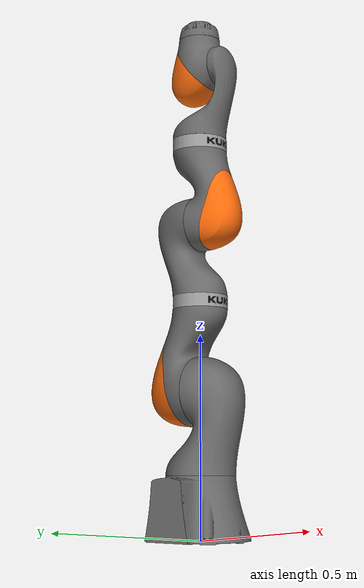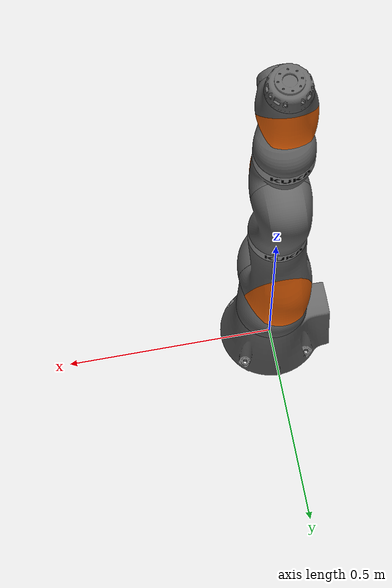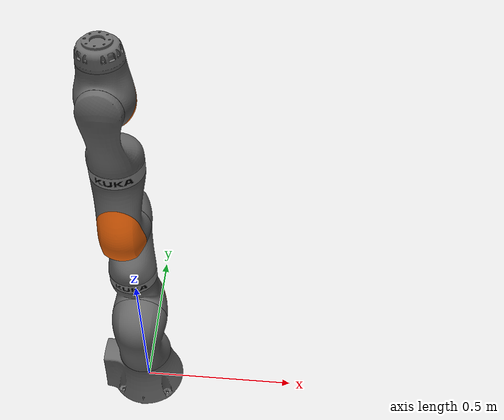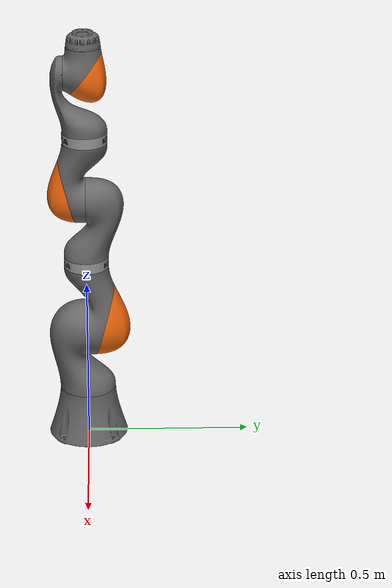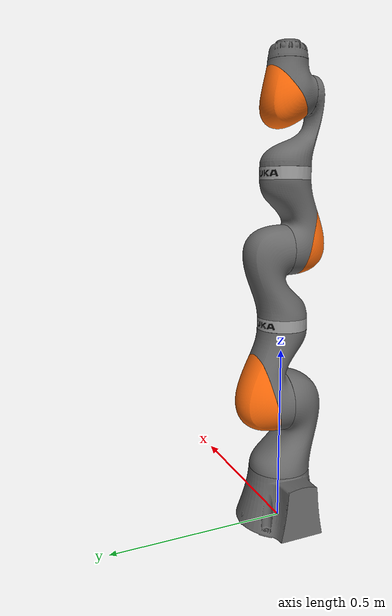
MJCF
<?xml version="1.0" ?>
<mujoco model="iiwa14">
	<compiler meshdir="iiwa14/meshes" texturedir="iiwa14/textures" angle="radian" autolimits="true" balanceinertia="true" boundmass="0.000001" boundinertia="0.000001"/>
	<default>
		<default class="visual">
			<geom contype="0" conaffinity="0"/>
		</default>
		<default class="collision">
			<geom rgba="1.0 0.0 0.0 0.0"/>
		</default>
	</default>
	<asset>
		<mesh name="link_0" file="stl/link_0.stl" scale="1.0 1.0 1.0"/>
		<mesh name="link_1" file="stl/link_1.stl" scale="1.0 1.0 1.0"/>
		<mesh name="link_2_orange" file="stl/link_2_orange.stl" scale="1.0 1.0 1.0"/>
		<mesh name="link_2_grey" file="stl/link_2_grey.stl" scale="1.0 1.0 1.0"/>
		<mesh name="link_3" file="stl/link_3.stl" scale="1.0 1.0 1.0"/>
		<mesh name="band" file="stl/band.stl" scale="1.0 1.0 1.0"/>
		<mesh name="kuka" file="stl/kuka.stl" scale="1.0 1.0 1.0"/>
		<mesh name="link_4_orange" file="stl/link_4_orange.stl" scale="1.0 1.0 1.0"/>
		<mesh name="link_4_grey" file="stl/link_4_grey.stl" scale="1.0 1.0 1.0"/>
		<mesh name="link_5" file="stl/link_5.stl" scale="1.0 1.0 1.0"/>
		<mesh name="link_6_orange" file="stl/link_6_orange.stl" scale="1.0 1.0 1.0"/>
		<mesh name="link_6_grey" file="stl/link_6_grey.stl" scale="1.0 1.0 1.0"/>
		<mesh name="link_7" file="stl/link_7.stl" scale="1.0 1.0 1.0"/>
		<material name="gray" rgba="0.4000000059604645 0.4000000059604645 0.4000000059604645 1.0" emission="0.0" specular="0.5"/>
		<material name="orange" rgba="1.0 0.4235289990901947 0.03921569883823395 1.0" emission="0.0" specular="0.5"/>
		<material name="light_gray" rgba="0.6000000238418579 0.6000000238418579 0.6000000238418579 1.0" emission="0.0" specular="0.5"/>
		<material name="black" rgba="0.0 0.0 0.0 1.0" emission="0.0" specular="0.5"/>
	</asset>
	<worldbody>
		<body name="iiwa14" pos="0.0 0.0 0.0" quat="1.0 0.0 0.0 0.0">
			<body name="base" pos="0.0 0.0 0.0" quat="1.0 0.0 0.0 0.0">
				<geom name="Geom_0" type="mesh" pos="-0.012611671350896358 -3.254423290854902e-07 0.07039070874452591" quat="-5.004489503335208e-05 0.7340425252914429 -7.331180427172512e-07 0.6791034936904907" mesh="link_0" material="gray" class="visual"/>
				<geom name="Geom_1" type="sphere" pos="0.0 0.0 0.029999999329447746" quat="1.0 0.0 0.0 0.0" size="0.11999999731779099 0.0 0.0" class="collision"/>
				<geom name="Geom_2" type="sphere" pos="-0.07999999821186066 0.0 0.10300000011920929" quat="1.0 0.0 0.0 0.0" size="0.07999999821186066 0.0 0.0" class="collision"/>
				<geom name="Geom_3" type="sphere" pos="-0.07999999821186066 0.0 0.03999999910593033" quat="1.0 0.0 0.0 0.0" size="0.07999999821186066 0.0 0.0" class="collision"/>
				<geom name="Geom_4" type="sphere" pos="0.0 0.0 0.14000000059604645" quat="1.0 0.0 0.0 0.0" size="0.10000000149011612 0.0 0.0" class="collision"/>
				<body name="link1" pos="0.0 0.0 0.1574999988079071" quat="1.0 0.0 0.0 0.0">
					<inertial mass="5.760000228881836" pos="0.0 -0.029999999329447746 0.11999999731779099" quat="1.0 0.0 0.0 0.0" diaginertia="0.0333000011742115 0.032999999821186066 0.012299999594688416"/>
					<geom name="Geom_5" type="mesh" pos="-1.9467224774416536e-06 -0.0335107184946537 0.1230739951133728" quat="0.702965259552002 0.07586953043937683 -0.07589659094810486 0.7030813694000244" mesh="link_1" material="gray" class="visual"/>
					<geom name="Geom_6" type="sphere" pos="0.0 0.0 -0.0005000000237487257" quat="1.0 0.0 0.0 0.0" size="0.07999999821186066 0.0 0.0" class="collision"/>
					<geom name="Geom_7" type="sphere" pos="0.009999999776482582 -0.02500000037252903 0.042500000447034836" quat="1.0 0.0 0.0 0.0" size="0.07500000298023224 0.0 0.0" class="collision"/>
					<geom name="Geom_8" type="sphere" pos="-0.009999999776482582 -0.02500000037252903 0.042500000447034836" quat="1.0 0.0 0.0 0.0" size="0.07500000298023224 0.0 0.0" class="collision"/>
					<geom name="Geom_9" type="sphere" pos="0.009999999776482582 -0.04500000178813934 0.10249999910593033" quat="1.0 0.0 0.0 0.0" size="0.07000000029802322 0.0 0.0" class="collision"/>
					<geom name="Geom_10" type="sphere" pos="-0.009999999776482582 -0.04500000178813934 0.10249999910593033" quat="1.0 0.0 0.0 0.0" size="0.07000000029802322 0.0 0.0" class="collision"/>
					<joint name="joint1" type="hinge" pos="0.0 0.0 0.0" range="-2.967060089111328 2.967060089111328" axis="0.0 0.0 1.0"/>
					<body name="link2" pos="0.0 0.0 0.20250000059604645" quat="0.0 0.0 0.7071067690849304 0.7071067690849304">
						<inertial mass="6.349999904632568" pos="0.0003000000142492354 0.05900000035762787 0.041999999433755875" quat="0.0 0.0 0.7071067690849304 0.7071067690849304" diaginertia="0.030500000342726707 0.030400000512599945 0.010999999940395355"/>
						<geom name="Geom_11" type="mesh" pos="5.833200248162029e-06 -0.0013649110915139318 0.08664810657501221" quat="0.44626760482788086 0.5484779477119446 -0.5484436750411987 0.4463481605052948" mesh="link_2_orange" material="orange" class="visual"/>
						<geom name="Geom_12" type="mesh" pos="0.0004379349120426923 0.10289616882801056 0.015210239216685295" quat="0.5095700025558472 0.4902762472629547 -0.4902554154396057 0.5095264911651611" mesh="link_2_grey" material="gray" class="visual"/>
						<geom name="Geom_13" type="sphere" pos="0.0 0.0 -0.009999999776482582" quat="1.0 0.0 0.0 0.0" size="0.0949999988079071 0.0 0.0" class="collision"/>
						<geom name="Geom_14" type="sphere" pos="0.0 0.0 0.04500000178813934" quat="1.0 0.0 0.0 0.0" size="0.09000000357627869 0.0 0.0" class="collision"/>
						<geom name="Geom_15" type="sphere" pos="-0.009999999776482582 0.03999999910593033 0.05400000140070915" quat="1.0 0.0 0.0 0.0" size="0.07000000029802322 0.0 0.0" class="collision"/>
						<geom name="Geom_16" type="sphere" pos="-0.009999999776482582 0.09000000357627869 0.03999999910593033" quat="1.0 0.0 0.0 0.0" size="0.06499999761581421 0.0 0.0" class="collision"/>
						<geom name="Geom_17" type="sphere" pos="-0.009999999776482582 0.12999999523162842 0.019999999552965164" quat="1.0 0.0 0.0 0.0" size="0.06499999761581421 0.0 0.0" class="collision"/>
						<geom name="Geom_18" type="sphere" pos="0.009999999776482582 0.03999999910593033 0.05400000140070915" quat="1.0 0.0 0.0 0.0" size="0.07000000029802322 0.0 0.0" class="collision"/>
						<geom name="Geom_19" type="sphere" pos="0.009999999776482582 0.09000000357627869 0.03999999910593033" quat="1.0 0.0 0.0 0.0" size="0.06499999761581421 0.0 0.0" class="collision"/>
						<geom name="Geom_20" type="sphere" pos="0.009999999776482582 0.12999999523162842 0.019999999552965164" quat="1.0 0.0 0.0 0.0" size="0.06499999761581421 0.0 0.0" class="collision"/>
						<geom name="Geom_21" type="sphere" pos="0.0 0.18000000715255737 0.0" quat="1.0 0.0 0.0 0.0" size="0.07500000298023224 0.0 0.0" class="collision"/>
						<joint name="joint2" type="hinge" pos="0.0 0.0 0.0" range="-2.094399929046631 2.094399929046631" axis="0.0 0.0 1.0"/>
						<body name="link3" pos="0.0 0.2045000046491623 0.0" quat="0.0 0.0 0.7071067690849304 0.7071067690849304">
							<inertial mass="3.5" pos="0.0 0.029999999329447746 0.12999999523162842" quat="1.0 0.0 0.0 0.0" diaginertia="0.02500000037252903 0.023800000548362732 0.007600000128149986"/>
							<geom name="Geom_22" type="mesh" pos="1.407883019055589e-06 0.03297119960188866 0.13639560341835022" quat="0.6979047656059265 -0.0827929750084877 0.08380381017923355 0.7064355611801147" mesh="link_3" material="gray" class="visual"/>
							<geom name="Geom_23" type="mesh" pos="-3.5052686143899336e-05 -1.8385724615654908e-05 0.016549965366721153" quat="-0.02164478413760662 0.706791877746582 0.02163795754313469 0.7067591547966003" mesh="band" material="light_gray" class="visual"/>
							<geom name="Geom_24" type="mesh" pos="1.0515899475649348e-06 -2.8647250474023167e-06 0.01613546535372734" quat="0.48493528366088867 0.5145955085754395 -0.4849644899368286 0.5146247744560242" mesh="kuka" material="black" class="visual"/>
							<geom name="Geom_25" type="sphere" pos="0.0 0.0 0.03550000116229057" quat="1.0 0.0 0.0 0.0" size="0.07500000298023224 0.0 0.0" class="collision"/>
							<geom name="Geom_26" type="sphere" pos="0.009999999776482582 0.023000000044703484 0.08550000190734863" quat="1.0 0.0 0.0 0.0" size="0.05999999865889549 0.0 0.0" class="collision"/>
							<geom name="Geom_27" type="sphere" pos="0.009999999776482582 0.04800000041723251 0.12549999356269836" quat="1.0 0.0 0.0 0.0" size="0.054999999701976776 0.0 0.0" class="collision"/>
							<geom name="Geom_28" type="sphere" pos="0.009999999776482582 0.0560000017285347 0.17550000548362732" quat="1.0 0.0 0.0 0.0" size="0.05999999865889549 0.0 0.0" class="collision"/>
							<geom name="Geom_29" type="sphere" pos="-0.009999999776482582 0.023000000044703484 0.08550000190734863" quat="1.0 0.0 0.0 0.0" size="0.05999999865889549 0.0 0.0" class="collision"/>
							<geom name="Geom_30" type="sphere" pos="-0.009999999776482582 0.04800000041723251 0.12549999356269836" quat="1.0 0.0 0.0 0.0" size="0.054999999701976776 0.0 0.0" class="collision"/>
							<geom name="Geom_31" type="sphere" pos="-0.009999999776482582 0.0560000017285347 0.17550000548362732" quat="1.0 0.0 0.0 0.0" size="0.05999999865889549 0.0 0.0" class="collision"/>
							<geom name="Geom_32" type="sphere" pos="0.0 0.04500000178813934 0.21549999713897705" quat="1.0 0.0 0.0 0.0" size="0.07500000298023224 0.0 0.0" class="collision"/>
							<geom name="Geom_33" type="sphere" pos="0.0 0.0 0.21549999713897705" quat="1.0 0.0 0.0 0.0" size="0.07500000298023224 0.0 0.0" class="collision"/>
							<joint name="joint3" type="hinge" pos="0.0 0.0 0.0" range="-2.967060089111328 2.967060089111328" axis="0.0 0.0 1.0"/>
							<body name="link4" pos="0.0 0.0 0.21549999713897705" quat="0.7071067690849304 0.7071067690849304 0.0 0.0">
								<inertial mass="3.5" pos="0.0 0.06700000166893005 0.03400000184774399" quat="0.7071067690849304 0.7071067690849304 0.0 0.0" diaginertia="0.017000000923871994 0.01640000008046627 0.006000000052154064"/>
								<geom name="Geom_34" type="mesh" pos="4.824970801564632e-06 0.00796885509043932 0.07976153492927551" quat="0.4424828588962555 0.5515479445457458 -0.5516470074653625 0.44236791133880615" mesh="link_4_orange" material="orange" class="visual"/>
								<geom name="Geom_35" type="mesh" pos="-7.19085733180691e-07 0.09924633800983429 0.012969840317964554" quat="0.5156792402267456 0.48389121890068054 -0.48382964730262756 0.5155900716781616" mesh="link_4_grey" material="gray" class="visual"/>
								<geom name="Geom_36" type="sphere" pos="0.0 0.009999999776482582 0.04600000008940697" quat="1.0 0.0 0.0 0.0" size="0.07800000160932541 0.0 0.0" class="collision"/>
								<geom name="Geom_37" type="sphere" pos="0.009999999776482582 0.05999999865889549 0.052000001072883606" quat="1.0 0.0 0.0 0.0" size="0.05999999865889549 0.0 0.0" class="collision"/>
								<geom name="Geom_38" type="sphere" pos="0.009999999776482582 0.11999999731779099 0.03400000184774399" quat="1.0 0.0 0.0 0.0" size="0.06499999761581421 0.0 0.0" class="collision"/>
								<geom name="Geom_39" type="sphere" pos="-0.009999999776482582 0.05999999865889549 0.052000001072883606" quat="1.0 0.0 0.0 0.0" size="0.05999999865889549 0.0 0.0" class="collision"/>
								<geom name="Geom_40" type="sphere" pos="-0.009999999776482582 0.11999999731779099 0.03400000184774399" quat="1.0 0.0 0.0 0.0" size="0.06499999761581421 0.0 0.0" class="collision"/>
								<geom name="Geom_41" type="sphere" pos="0.0 0.18400000035762787 0.0" quat="1.0 0.0 0.0 0.0" size="0.07500000298023224 0.0 0.0" class="collision"/>
								<joint name="joint4" type="hinge" pos="0.0 0.0 0.0" range="-2.094399929046631 2.094399929046631" axis="0.0 0.0 1.0"/>
								<body name="link5" pos="0.0 0.18449999392032623 0.0" quat="0.0 0.0 0.7071067690849304 0.7071067690849304">
									<inertial mass="3.5" pos="9.999999747378752e-05 0.020999999716877937 0.07599999755620956" quat="1.0 0.0 0.0 0.0" diaginertia="0.009999999776482582 0.008700000122189522 0.004490000195801258"/>
									<geom name="Geom_42" type="mesh" pos="0.0038119491655379534 0.02870779298245907 0.09361015260219574" quat="0.7097618579864502 -0.1587982326745987 0.12745581567287445 0.6743709444999695" mesh="link_5" material="gray" class="visual"/>
									<geom name="Geom_43" type="mesh" pos="-3.5052686143899336e-05 -1.8385724615654908e-05 0.016549965366721153" quat="-0.02164478413760662 0.706791877746582 0.02163795754313469 0.7067591547966003" mesh="band" material="light_gray" class="visual"/>
									<geom name="Geom_44" type="mesh" pos="1.0515899475649348e-06 -2.8647250474023167e-06 0.01613546535372734" quat="0.48493528366088867 0.5145955085754395 -0.4849644899368286 0.5146247744560242" mesh="kuka" material="black" class="visual"/>
									<geom name="Geom_45" type="sphere" pos="0.0 0.0 0.03350000083446503" quat="1.0 0.0 0.0 0.0" size="0.07500000298023224 0.0 0.0" class="collision"/>
									<geom name="Geom_46" type="sphere" pos="-0.012000000104308128 0.03099999949336052 0.0754999965429306" quat="1.0 0.0 0.0 0.0" size="0.05000000074505806 0.0 0.0" class="collision"/>
									<geom name="Geom_47" type="sphere" pos="0.012000000104308128 0.03099999949336052 0.0754999965429306" quat="1.0 0.0 0.0 0.0" size="0.05000000074505806 0.0 0.0" class="collision"/>
									<geom name="Geom_48" type="sphere" pos="-0.012000000104308128 0.05999999865889549 0.11550000309944153" quat="1.0 0.0 0.0 0.0" size="0.03999999910593033 0.0 0.0" class="collision"/>
									<geom name="Geom_49" type="sphere" pos="0.012000000104308128 0.05999999865889549 0.11550000309944153" quat="1.0 0.0 0.0 0.0" size="0.03999999910593033 0.0 0.0" class="collision"/>
									<geom name="Geom_50" type="sphere" pos="-0.009999999776482582 0.06499999761581421 0.1655000001192093" quat="1.0 0.0 0.0 0.0" size="0.03999999910593033 0.0 0.0" class="collision"/>
									<geom name="Geom_51" type="sphere" pos="0.009999999776482582 0.06499999761581421 0.1655000001192093" quat="1.0 0.0 0.0 0.0" size="0.03999999910593033 0.0 0.0" class="collision"/>
									<geom name="Geom_52" type="sphere" pos="-0.012000000104308128 0.06499999761581421 0.18549999594688416" quat="1.0 0.0 0.0 0.0" size="0.03500000014901161 0.0 0.0" class="collision"/>
									<geom name="Geom_53" type="sphere" pos="0.012000000104308128 0.06499999761581421 0.18549999594688416" quat="1.0 0.0 0.0 0.0" size="0.03500000014901161 0.0 0.0" class="collision"/>
									<joint name="joint5" type="hinge" pos="0.0 0.0 0.0" range="-2.967060089111328 2.967060089111328" axis="0.0 0.0 1.0"/>
									<body name="link6" pos="0.0 0.0 0.21549999713897705" quat="0.7071067690849304 0.7071067690849304 0.0 0.0">
										<inertial mass="1.7999999523162842" pos="0.0 0.0006000000284984708 0.00039999998989515007" quat="0.7071067690849304 0.7071067690849304 0.0 0.0" diaginertia="0.004900000058114529 0.004699999932199717 0.003599999938160181"/>
										<geom name="Geom_54" type="mesh" pos="-1.1731925724234316e-06 -0.032810576260089874 0.025841152295470238" quat="0.3552939295768738 0.6113311052322388 -0.6118375062942505 0.35453543066978455" mesh="link_6_orange" material="orange" class="visual"/>
										<geom name="Geom_55" type="mesh" pos="-4.166903636360075e-06 0.029530277475714684 -0.02136475406587124" quat="0.3245398700237274 0.6282565593719482 -0.6282598972320557 0.3244335353374481" mesh="link_6_grey" material="gray" class="visual"/>
										<geom name="Geom_56" type="sphere" pos="0.0 0.0 -0.05900000035762787" quat="1.0 0.0 0.0 0.0" size="0.054999999701976776 0.0 0.0" class="collision"/>
										<geom name="Geom_57" type="sphere" pos="0.0 -0.029999999329447746 0.010999999940395355" quat="1.0 0.0 0.0 0.0" size="0.06499999761581421 0.0 0.0" class="collision"/>
										<geom name="Geom_58" type="sphere" pos="0.0 0.0 0.0" quat="1.0 0.0 0.0 0.0" size="0.07999999821186066 0.0 0.0" class="collision"/>
										<joint name="joint6" type="hinge" pos="0.0 0.0 0.0" range="-2.094399929046631 2.094399929046631" axis="0.0 0.0 1.0"/>
										<body name="link7" pos="0.0 0.08100000023841858 0.0" quat="0.0 0.0 0.7071067690849304 0.7071067690849304">
											<inertial mass="1.2000000476837158" pos="0.0 0.0 0.019999999552965164" quat="1.0 0.0 0.0 0.0" diaginertia="0.0010000000474974513 0.0010000000474974513 0.0010000000474974513"/>
											<geom name="Geom_59" type="mesh" pos="-9.661049261922017e-06 -9.153581572718394e-07 0.01686968095600605" quat="0.4999147951602936 0.500280499458313 -0.4997194707393646 0.5000850558280945" mesh="link_7" material="gray" class="visual"/>
											<geom name="Geom_60" type="sphere" pos="0.0 0.0 0.0010000000474974513" quat="1.0 0.0 0.0 0.0" size="0.05999999865889549 0.0 0.0" class="collision"/>
											<joint name="joint7" type="hinge" pos="0.0 0.0 0.0" range="-3.0543301105499268 3.0543301105499268" axis="0.0 0.0 1.0"/>
										</body>
									</body>
								</body>
							</body>
						</body>
					</body>
				</body>
			</body>
		</body>
	</worldbody>
	<equality/>
</mujoco>
